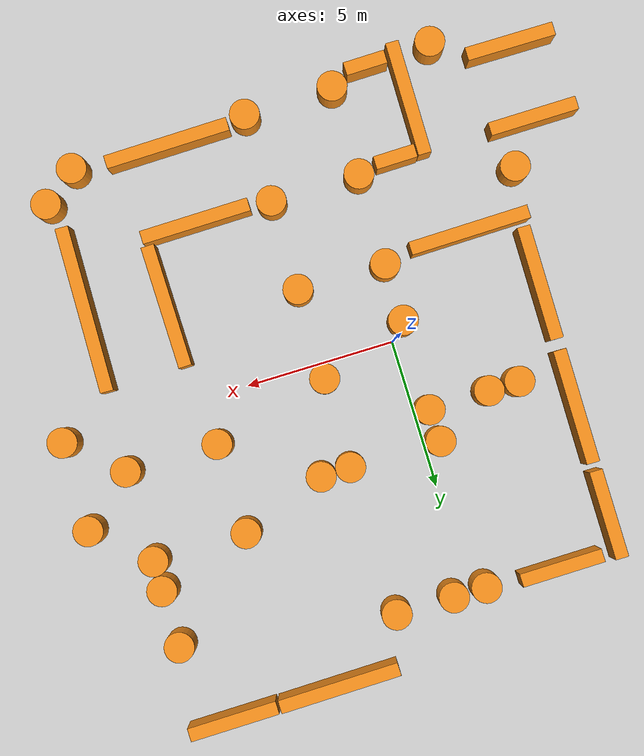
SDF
<sdf version="1.7">
 <world name="default">
  <light name="sun" type="directional">
   <pose>0 0 10 0 -0 0</pose>
   <diffuse>0.8 0.8 0.8 1</diffuse>
   <specular>0.2 0.2 0.2 1</specular>
   <attenuation>
    <range>1000</range>
    <constant>0.9</constant>
    <linear>0.01</linear>
    <quadratic>0.001</quadratic>
   </attenuation>
   <direction>-0.5 0.1 -0.9</direction>
   <spot><inner_angle>0</inner_angle><outer_angle>0</outer_angle><falloff>0</falloff></spot>
  </light>
  <model name="ground_plane">
   <static>1</static>
   <link name="link">
    <collision name="collision">
     <geometry><plane><normal>0 0 1</normal><size>100 100</size></plane></geometry>
     <surface>
      <contact><collide_bitmask>65535</collide_bitmask></contact>
      <friction><ode><mu>100</mu><mu2>50</mu2></ode></friction>
     </surface>
    </collision>
    <visual name="visual">
     <cast_shadows>0</cast_shadows>
     <geometry><plane><normal>0 0 1</normal><size>100 100</size></plane></geometry>
     <material>
      <script><uri>file://media/materials/scripts/gazebo.material</uri><name>Gazebo/Grey</name></script>
     </material>
    </visual>
   </link>
  </model>
  <gravity>0 0 -9.8</gravity>
  <magnetic_field>6e-06 2.3e-05 -4.2e-05</magnetic_field>
  <atmosphere type="adiabatic"/>
  <physics type="ode">
   <max_step_size>0.001</max_step_size>
   <real_time_factor>1</real_time_factor>
   <real_time_update_rate>1000</real_time_update_rate>
  </physics>
  <scene><ambient>0.4 0.4 0.4 1</ambient><background>0.7 0.7 0.7 1</background><shadows>1</shadows></scene>
  <spherical_coordinates>
   <surface_model>EARTH_WGS84</surface_model>
   <latitude_deg>0</latitude_deg>
   <longitude_deg>0</longitude_deg>
   <elevation>0</elevation>
   <heading_deg>0</heading_deg>
  </spherical_coordinates>
  <model name="unit_box_clone">
   <static>1</static>
   <pose>-6.514 -8.24527 0.499833 1e-06 -0.000112 -0.004604</pose>
   <link name="link">
    <inertial>
     <mass>1</mass>
     <inertia>
      <ixx>0.166667</ixx>
      <ixy>0</ixy>
      <ixz>0</ixz>
      <iyy>0.166667</iyy>
      <iyz>0</iyz>
      <izz>0.166667</izz>
     </inertia>
    </inertial>
    <collision name="collision"><geometry><box><size>2.97302 0.44 1</size></box></geometry></collision>
    <visual name="visual">
     <geometry><box><size>2.97302 0.44 1</size></box></geometry>
     <material>
      <script><name>Gazebo/Orange</name><uri>file://media/materials/scripts/gazebo.material</uri></script>
     </material>
    </visual>
   </link>
  </model>
  <model name="unit_box_clone_clone_1">
   <static>1</static>
   <pose>-6.51555 -5.68286 0.499833 1e-06 0.000113 0.004617</pose>
   <link name="link">
    <inertial>
     <mass>1</mass>
     <inertia>
      <ixx>0.166667</ixx>
      <ixy>0</ixy>
      <ixz>0</ixz>
      <iyy>0.166667</iyy>
      <iyz>0</iyz>
      <izz>0.166667</izz>
     </inertia>
    </inertial>
    <collision name="collision"><geometry><box><size>2.9745 0.44 1</size></box></geometry></collision>
    <visual name="visual">
     <geometry><box><size>2.9745 0.44 1</size></box></geometry>
     <material>
      <script><name>Gazebo/Orange</name><uri>file://media/materials/scripts/gazebo.material</uri></script>
     </material>
    </visual>
   </link>
  </model>
  <model name="unit_box_clone_clone_2">
   <static>1</static>
   <pose>-2.78807 -7.44536 0.499406 -3e-06 0.000312 -1.5804</pose>
   <link name="link">
    <inertial>
     <mass>1</mass>
     <inertia>
      <ixx>0.166667</ixx>
      <ixy>0</ixy>
      <ixz>0</ixz>
      <iyy>0.166667</iyy>
      <iyz>0</iyz>
      <izz>0.166667</izz>
     </inertia>
    </inertial>
    <collision name="collision"><geometry><box><size>3.8183 0.44 1</size></box></geometry></collision>
    <visual name="visual">
     <geometry><box><size>3.8183 0.44 1</size></box></geometry>
     <material>
      <script><name>Gazebo/Orange</name><uri>file://media/materials/scripts/gazebo.material</uri></script>
     </material>
    </visual>
   </link>
  </model>
  <model name="unit_box_clone_clone_1_clone">
   <static>1</static>
   <pose>-3.42885 -2.72467 0.499211 5e-06 0.000391 0.01153</pose>
   <link name="link">
    <inertial>
     <mass>1</mass>
     <inertia>
      <ixx>0.166667</ixx>
      <ixy>0</ixy>
      <ixz>0</ixz>
      <iyy>0.166667</iyy>
      <iyz>0</iyz>
      <izz>0.166667</izz>
     </inertia>
    </inertial>
    <collision name="collision"><geometry><box><size>4.04978 0.44 1</size></box></geometry></collision>
    <visual name="visual">
     <geometry><box><size>4.04978 0.44 1</size></box></geometry>
     <material>
      <script><name>Gazebo/Orange</name><uri>file://media/materials/scripts/gazebo.material</uri></script>
     </material>
    </visual>
   </link>
  </model>
  <model name="unit_cylinder_0">
   <static>1</static>
   <pose>-0.480974 -2.47128 0.499997 1e-06 -0 0</pose>
   <link name="link">
    <inertial>
     <mass>1</mass>
     <inertia><ixx>0.145833</ixx><ixy>0</ixy><ixz>0</ixz><iyy>0.145833</iyy><iyz>0</iyz><izz>0.125</izz></inertia>
    </inertial>
    <collision name="collision">
     <geometry><cylinder><radius>0.5</radius><length>1</length></cylinder></geometry>
    </collision>
    <visual name="visual">
     <geometry><cylinder><radius>0.5</radius><length>1</length></cylinder></geometry>
     <material>
      <script><name>Gazebo/Orange</name><uri>file://media/materials/scripts/gazebo.material</uri></script>
     </material>
    </visual>
   </link>
  </model>
  <model name="unit_cylinder_4">
   <static>1</static>
   <pose>-0.516896 -5.53105 0.499994 -1e-06 -0 -0</pose>
   <link name="link">
    <inertial>
     <mass>1</mass>
     <inertia><ixx>0.145833</ixx><ixy>0</ixy><ixz>0</ixz><iyy>0.145833</iyy><iyz>0</iyz><izz>0.125</izz></inertia>
    </inertial>
    <collision name="collision">
     <geometry><cylinder><radius>0.5</radius><length>1</length></cylinder></geometry>
    </collision>
    <visual name="visual">
     <geometry><cylinder><radius>0.5</radius><length>1</length></cylinder></geometry>
     <material>
      <script><name>Gazebo/Orange</name><uri>file://media/materials/scripts/gazebo.material</uri></script>
     </material>
    </visual>
   </link>
  </model>
  <model name="unit_cylinder_4_clone">
   <static>1</static>
   <pose>-4.00116 -9.01084 0.499997 1e-06 -0 0</pose>
   <link name="link">
    <inertial>
     <mass>1</mass>
     <inertia><ixx>0.145833</ixx><ixy>0</ixy><ixz>0</ixz><iyy>0.145833</iyy><iyz>0</iyz><izz>0.125</izz></inertia>
    </inertial>
    <collision name="collision">
     <geometry><cylinder><radius>0.5</radius><length>1</length></cylinder></geometry>
    </collision>
    <visual name="visual">
     <geometry><cylinder><radius>0.5</radius><length>1</length></cylinder></geometry>
     <material>
      <script><name>Gazebo/Orange</name><uri>file://media/materials/scripts/gazebo.material</uri></script>
     </material>
    </visual>
   </link>
  </model>
  <model name="unit_cylinder_5">
   <static>1</static>
   <pose>-5.4664 -4.2854 0.499994 -1e-06 -0 -0</pose>
   <link name="link">
    <inertial>
     <mass>1</mass>
     <inertia><ixx>0.145833</ixx><ixy>0</ixy><ixz>0</ixz><iyy>0.145833</iyy><iyz>0</iyz><izz>0.125</izz></inertia>
    </inertial>
    <collision name="collision">
     <geometry><cylinder><radius>0.5</radius><length>1</length></cylinder></geometry>
    </collision>
    <visual name="visual">
     <geometry><cylinder><radius>0.5</radius><length>1</length></cylinder></geometry>
     <material>
      <script><name>Gazebo/Orange</name><uri>file://media/materials/scripts/gazebo.material</uri></script>
     </material>
    </visual>
   </link>
  </model>
  <model name="unit_cylinder_6">
   <static>1</static>
   <pose>2.4739 -5.52405 0.499994 -1e-06 -0 -0</pose>
   <link name="link">
    <inertial>
     <mass>1</mass>
     <inertia><ixx>0.145833</ixx><ixy>0</ixy><ixz>0</ixz><iyy>0.145833</iyy><iyz>0</iyz><izz>0.125</izz></inertia>
    </inertial>
    <collision name="collision">
     <geometry><cylinder><radius>0.5</radius><length>1</length></cylinder></geometry>
    </collision>
    <visual name="visual">
     <geometry><cylinder><radius>0.5</radius><length>1</length></cylinder></geometry>
     <material>
      <script><name>Gazebo/Orange</name><uri>file://media/materials/scripts/gazebo.material</uri></script>
     </material>
    </visual>
   </link>
  </model>
  <model name="unit_cylinder_7">
   <static>1</static>
   <pose>2.48409 -2.50429 0.499994 -1e-06 -0 -0</pose>
   <link name="link">
    <inertial>
     <mass>1</mass>
     <inertia><ixx>0.145833</ixx><ixy>0</ixy><ixz>0</ixz><iyy>0.145833</iyy><iyz>0</iyz><izz>0.125</izz></inertia>
    </inertial>
    <collision name="collision">
     <geometry><cylinder><radius>0.5</radius><length>1</length></cylinder></geometry>
    </collision>
    <visual name="visual">
     <geometry><cylinder><radius>0.5</radius><length>1</length></cylinder></geometry>
     <material>
      <script><name>Gazebo/Orange</name><uri>file://media/materials/scripts/gazebo.material</uri></script>
     </material>
    </visual>
   </link>
  </model>
  <model name="unit_cylinder_7_clone">
   <static>1</static>
   <pose>-0.49897 -0.541378 0.499997 1e-06 -0 0</pose>
   <link name="link">
    <inertial>
     <mass>1</mass>
     <inertia><ixx>0.145833</ixx><ixy>0</ixy><ixz>0</ixz><iyy>0.145833</iyy><iyz>0</iyz><izz>0.125</izz></inertia>
    </inertial>
    <collision name="collision">
     <geometry><cylinder><radius>0.5</radius><length>1</length></cylinder></geometry>
    </collision>
    <visual name="visual">
     <geometry><cylinder><radius>0.5</radius><length>1</length></cylinder></geometry>
     <material>
      <script><name>Gazebo/Orange</name><uri>file://media/materials/scripts/gazebo.material</uri></script>
     </material>
    </visual>
   </link>
  </model>
  <model name="unit_cylinder_7_clone_0">
   <static>1</static>
   <pose>2.50221 0.530976 0.499997 1e-06 -0 0</pose>
   <link name="link">
    <inertial>
     <mass>1</mass>
     <inertia><ixx>0.145833</ixx><ixy>0</ixy><ixz>0</ixz><iyy>0.145833</iyy><iyz>0</iyz><izz>0.125</izz></inertia>
    </inertial>
    <collision name="collision">
     <geometry><cylinder><radius>0.5</radius><length>1</length></cylinder></geometry>
    </collision>
    <visual name="visual">
     <geometry><cylinder><radius>0.5</radius><length>1</length></cylinder></geometry>
     <material>
      <script><name>Gazebo/Orange</name><uri>file://media/materials/scripts/gazebo.material</uri></script>
     </material>
    </visual>
   </link>
  </model>
  <model name="unit_cylinder_7_clone_clone">
   <static>1</static>
   <pose>-0.472274 2.49595 0.499994 -2e-06 -0 -0</pose>
   <link name="link">
    <inertial>
     <mass>1</mass>
     <inertia><ixx>0.145833</ixx><ixy>0</ixy><ixz>0</ixz><iyy>0.145833</iyy><iyz>0</iyz><izz>0.125</izz></inertia>
    </inertial>
    <collision name="collision">
     <geometry><cylinder><radius>0.5</radius><length>1</length></cylinder></geometry>
    </collision>
    <visual name="visual">
     <geometry><cylinder><radius>0.5</radius><length>1</length></cylinder></geometry>
     <material>
      <script><name>Gazebo/Orange</name><uri>file://media/materials/scripts/gazebo.material</uri></script>
     </material>
    </visual>
   </link>
  </model>
  <model name="unit_cylinder_7_clone_0_clone">
   <static>1</static>
   <pose>2.53875 3.52865 0.5 0 -0 2e-05</pose>
   <link name="link">
    <inertial>
     <mass>1</mass>
     <inertia><ixx>0.145833</ixx><ixy>0</ixy><ixz>0</ixz><iyy>0.145833</iyy><iyz>0</iyz><izz>0.125</izz></inertia>
    </inertial>
    <collision name="collision">
     <geometry><cylinder><radius>0.5</radius><length>1</length></cylinder></geometry>
    </collision>
    <visual name="visual">
     <geometry><cylinder><radius>0.5</radius><length>1</length></cylinder></geometry>
     <material>
      <script><name>Gazebo/Orange</name><uri>file://media/materials/scripts/gazebo.material</uri></script>
     </material>
    </visual>
   </link>
  </model>
  <model name="unit_cylinder_7_clone_0_clone_2">
   <static>1</static>
   <pose>-0.536464 8.5406 0.499997 2e-06 -0 0</pose>
   <link name="link">
    <inertial>
     <mass>1</mass>
     <inertia><ixx>0.145833</ixx><ixy>0</ixy><ixz>0</ixz><iyy>0.145833</iyy><iyz>0</iyz><izz>0.125</izz></inertia>
    </inertial>
    <collision name="collision">
     <geometry><cylinder><radius>0.5</radius><length>1</length></cylinder></geometry>
    </collision>
    <visual name="visual">
     <geometry><cylinder><radius>0.5</radius><length>1</length></cylinder></geometry>
     <material>
      <script><name>Gazebo/Orange</name><uri>file://media/materials/scripts/gazebo.material</uri></script>
     </material>
    </visual>
   </link>
  </model>
  <model name="unit_cylinder_7_clone_0_clone_0_clone">
   <static>1</static>
   <pose>-0.509806 3.57585 0.499994 -2e-06 -0 -0</pose>
   <link name="link">
    <inertial>
     <mass>1</mass>
     <inertia><ixx>0.145833</ixx><ixy>0</ixy><ixz>0</ixz><iyy>0.145833</iyy><iyz>0</iyz><izz>0.125</izz></inertia>
    </inertial>
    <collision name="collision">
     <geometry><cylinder><radius>0.5</radius><length>1</length></cylinder></geometry>
    </collision>
    <visual name="visual">
     <geometry><cylinder><radius>0.5</radius><length>1</length></cylinder></geometry>
     <material>
      <script><name>Gazebo/Orange</name><uri>file://media/materials/scripts/gazebo.material</uri></script>
     </material>
    </visual>
   </link>
  </model>
  <model name="unit_box_clone_clone_1_clone_clone">
   <static>1</static>
   <pose>5.0402 -5.61517 0.499513 -2e-06 -0.000266 0.008718</pose>
   <link name="link">
    <inertial>
     <mass>1</mass>
     <inertia>
      <ixx>0.166667</ixx>
      <ixy>0</ixy>
      <ixz>0</ixz>
      <iyy>0.166667</iyy>
      <iyz>0</iyz>
      <izz>0.166667</izz>
     </inertia>
    </inertial>
    <collision name="collision"><geometry><box><size>3.66692 0.44 1</size></box></geometry></collision>
    <visual name="visual">
     <geometry><box><size>3.66692 0.44 1</size></box></geometry>
     <material>
      <script><name>Gazebo/Orange</name><uri>file://media/materials/scripts/gazebo.material</uri></script>
     </material>
    </visual>
   </link>
  </model>
  <model name="unit_box_clone_clone_1_clone_clone_clone">
   <static>1</static>
   <pose>5.18986 -8.32751 0.499084 6e-06 0.00044 0.012517</pose>
   <link name="link">
    <inertial>
     <mass>1</mass>
     <inertia>
      <ixx>0.166667</ixx>
      <ixy>0</ixy>
      <ixz>0</ixz>
      <iyy>0.166667</iyy>
      <iyz>0</iyz>
      <izz>0.166667</izz>
     </inertia>
    </inertial>
    <collision name="collision"><geometry><box><size>4.17941 0.44 1</size></box></geometry></collision>
    <visual name="visual">
     <geometry><box><size>4.17941 0.44 1</size></box></geometry>
     <material>
      <script><name>Gazebo/Orange</name><uri>file://media/materials/scripts/gazebo.material</uri></script>
     </material>
    </visual>
   </link>
  </model>
  <model name="unit_cylinder_6_clone">
   <static>1</static>
   <pose>2.48643 -8.48945 0.49999 0 -0 0</pose>
   <link name="link">
    <inertial>
     <mass>1</mass>
     <inertia><ixx>0.145833</ixx><ixy>0</ixy><ixz>0</ixz><iyy>0.145833</iyy><iyz>0</iyz><izz>0.125</izz></inertia>
    </inertial>
    <collision name="collision">
     <geometry><cylinder><radius>0.5</radius><length>1</length></cylinder></geometry>
    </collision>
    <visual name="visual">
     <geometry><cylinder><radius>0.5</radius><length>1</length></cylinder></geometry>
     <material>
      <script><name>Gazebo/Orange</name><uri>file://media/materials/scripts/gazebo.material</uri></script>
     </material>
    </visual>
   </link>
  </model>
  <model name="unit_cylinder_6_clone_clone">
   <static>1</static>
   <pose>-0.518139 -8.54207 0.499994 -2e-06 -0 -0</pose>
   <link name="link">
    <inertial>
     <mass>1</mass>
     <inertia><ixx>0.145833</ixx><ixy>0</ixy><ixz>0</ixz><iyy>0.145833</iyy><iyz>0</iyz><izz>0.125</izz></inertia>
    </inertial>
    <collision name="collision">
     <geometry><cylinder><radius>0.5</radius><length>1</length></cylinder></geometry>
    </collision>
    <visual name="visual">
     <geometry><cylinder><radius>0.5</radius><length>1</length></cylinder></geometry>
     <material>
      <script><name>Gazebo/Orange</name><uri>file://media/materials/scripts/gazebo.material</uri></script>
     </material>
    </visual>
   </link>
  </model>
  <model name="unit_box_clone_clone_1_clone_clone_0">
   <static>1</static>
   <pose>-1.81527 -5.71701 0.499999 0 -1e-06 0.011399</pose>
   <link name="link">
    <inertial>
     <mass>1</mass>
     <inertia>
      <ixx>0.166667</ixx>
      <ixy>0</ixy>
      <ixz>0</ixz>
      <iyy>0.166667</iyy>
      <iyz>0</iyz>
      <izz>0.166667</izz>
     </inertia>
    </inertial>
    <collision name="collision"><geometry><box><size>1.39159 0.44 1</size></box></geometry></collision>
    <visual name="visual">
     <geometry><box><size>1.39159 0.44 1</size></box></geometry>
     <material>
      <script><name>Gazebo/Orange</name><uri>file://media/materials/scripts/gazebo.material</uri></script>
     </material>
    </visual>
   </link>
  </model>
  <model name="unit_box_clone_clone_1_clone_clone_0_clone">
   <static>1</static>
   <pose>-1.77874 -8.95128 0.499996 1e-06 5e-06 0.011386</pose>
   <link name="link">
    <inertial>
     <mass>1</mass>
     <inertia>
      <ixx>0.166667</ixx>
      <ixy>0</ixy>
      <ixz>0</ixz>
      <iyy>0.166667</iyy>
      <iyz>0</iyz>
      <izz>0.166667</izz>
     </inertia>
    </inertial>
    <collision name="collision"><geometry><box><size>1.39159 0.44 1</size></box></geometry></collision>
    <visual name="visual">
     <geometry><box><size>1.39159 0.44 1</size></box></geometry>
     <material>
      <script><name>Gazebo/Orange</name><uri>file://media/materials/scripts/gazebo.material</uri></script>
     </material>
    </visual>
   </link>
  </model>
  <model name="unit_box_clone_clone_2_clone_clone_clone">
   <static>1</static>
   <pose>6.74287 -3.22945 0.499149 -5e-06 -0.000415 -1.55893</pose>
   <link name="link">
    <inertial>
     <mass>1</mass>
     <inertia>
      <ixx>0.166667</ixx>
      <ixy>0</ixy>
      <ixz>0</ixz>
      <iyy>0.166667</iyy>
      <iyz>0</iyz>
      <izz>0.166667</izz>
     </inertia>
    </inertial>
    <collision name="collision"><geometry><box><size>4.11491 0.44 1</size></box></geometry></collision>
    <visual name="visual">
     <geometry><box><size>4.11491 0.44 1</size></box></geometry>
     <material>
      <script><name>Gazebo/Orange</name><uri>file://media/materials/scripts/gazebo.material</uri></script>
     </material>
    </visual>
   </link>
  </model>
  <model name="unit_cylinder_7_clone_1">
   <static>1</static>
   <pose>8.39715 -8.43905 0.499996 2e-06 -0 0</pose>
   <link name="link">
    <inertial>
     <mass>1</mass>
     <inertia><ixx>0.145833</ixx><ixy>0</ixy><ixz>0</ixz><iyy>0.145833</iyy><iyz>0</iyz><izz>0.125</izz></inertia>
    </inertial>
    <collision name="collision">
     <geometry><cylinder><radius>0.5</radius><length>1</length></cylinder></geometry>
    </collision>
    <visual name="visual">
     <geometry><cylinder><radius>0.5</radius><length>1</length></cylinder></geometry>
     <material>
      <script><name>Gazebo/Orange</name><uri>file://media/materials/scripts/gazebo.material</uri></script>
     </material>
    </visual>
   </link>
  </model>
  <model name="unit_cylinder_7_clone_2">
   <static>1</static>
   <pose>9.52561 -7.55742 0.499994 -2e-06 -0 -0</pose>
   <link name="link">
    <inertial>
     <mass>1</mass>
     <inertia><ixx>0.145833</ixx><ixy>0</ixy><ixz>0</ixz><iyy>0.145833</iyy><iyz>0</iyz><izz>0.125</izz></inertia>
    </inertial>
    <collision name="collision">
     <geometry><cylinder><radius>0.5</radius><length>1</length></cylinder></geometry>
    </collision>
    <visual name="visual">
     <geometry><cylinder><radius>0.5</radius><length>1</length></cylinder></geometry>
     <material>
      <script><name>Gazebo/Orange</name><uri>file://media/materials/scripts/gazebo.material</uri></script>
     </material>
    </visual>
   </link>
  </model>
  <model name="unit_box_clone_clone_2_clone_clone_clone_clone">
   <static>1</static>
   <pose>9.32831 -3.90631 0.496608 -2.7e-05 0.001226 -1.59248</pose>
   <link name="link">
    <inertial>
     <mass>1</mass>
     <inertia>
      <ixx>0.166667</ixx>
      <ixy>0</ixy>
      <ixz>0</ixz>
      <iyy>0.166667</iyy>
      <iyz>0</iyz>
      <izz>0.166667</izz>
     </inertia>
    </inertial>
    <collision name="collision"><geometry><box><size>5.5532 0.44 1</size></box></geometry></collision>
    <visual name="visual">
     <geometry><box><size>5.5532 0.44 1</size></box></geometry>
     <material>
      <script><name>Gazebo/Orange</name><uri>file://media/materials/scripts/gazebo.material</uri></script>
     </material>
    </visual>
   </link>
  </model>
  <model name="unit_cylinder_7_clone_0_clone_0">
   <static>1</static>
   <pose>11.2529 0.04206 0.499997 3e-06 2e-06 0</pose>
   <link name="link">
    <inertial>
     <mass>1</mass>
     <inertia><ixx>0.145833</ixx><ixy>0</ixy><ixz>0</ixz><iyy>0.145833</iyy><iyz>0</iyz><izz>0.125</izz></inertia>
    </inertial>
    <collision name="collision">
     <geometry><cylinder><radius>0.5</radius><length>1</length></cylinder></geometry>
    </collision>
    <visual name="visual">
     <geometry><cylinder><radius>0.5</radius><length>1</length></cylinder></geometry>
     <material>
      <script><name>Gazebo/Orange</name><uri>file://media/materials/scripts/gazebo.material</uri></script>
     </material>
    </visual>
   </link>
  </model>
  <model name="unit_cylinder_7_clone_0_clone_1">
   <static>1</static>
   <pose>9.55566 1.53993 0.499996 3e-06 1e-06 -0</pose>
   <link name="link">
    <inertial>
     <mass>1</mass>
     <inertia><ixx>0.145833</ixx><ixy>0</ixy><ixz>0</ixz><iyy>0.145833</iyy><iyz>0</iyz><izz>0.125</izz></inertia>
    </inertial>
    <collision name="collision">
     <geometry><cylinder><radius>0.5</radius><length>1</length></cylinder></geometry>
    </collision>
    <visual name="visual">
     <geometry><cylinder><radius>0.5</radius><length>1</length></cylinder></geometry>
     <material>
      <script><name>Gazebo/Orange</name><uri>file://media/materials/scripts/gazebo.material</uri></script>
     </material>
    </visual>
   </link>
  </model>
  <model name="unit_cylinder_7_clone_0_clone_3">
   <static>1</static>
   <pose>6.46147 1.54817 0.499994 -3e-06 -1e-06 -0</pose>
   <link name="link">
    <inertial>
     <mass>1</mass>
     <inertia><ixx>0.145833</ixx><ixy>0</ixy><ixz>0</ixz><iyy>0.145833</iyy><iyz>0</iyz><izz>0.125</izz></inertia>
    </inertial>
    <collision name="collision">
     <geometry><cylinder><radius>0.5</radius><length>1</length></cylinder></geometry>
    </collision>
    <visual name="visual">
     <geometry><cylinder><radius>0.5</radius><length>1</length></cylinder></geometry>
     <material>
      <script><name>Gazebo/Orange</name><uri>file://media/materials/scripts/gazebo.material</uri></script>
     </material>
    </visual>
   </link>
  </model>
  <model name="unit_cylinder_7_clone_0_clone_clone">
   <static>1</static>
   <pose>6.40094 4.58284 0.499997 3e-06 2e-06 0</pose>
   <link name="link">
    <inertial>
     <mass>1</mass>
     <inertia><ixx>0.145833</ixx><ixy>0</ixy><ixz>0</ixz><iyy>0.145833</iyy><iyz>0</iyz><izz>0.125</izz></inertia>
    </inertial>
    <collision name="collision">
     <geometry><cylinder><radius>0.5</radius><length>1</length></cylinder></geometry>
    </collision>
    <visual name="visual">
     <geometry><cylinder><radius>0.5</radius><length>1</length></cylinder></geometry>
     <material>
      <script><name>Gazebo/Orange</name><uri>file://media/materials/scripts/gazebo.material</uri></script>
     </material>
    </visual>
   </link>
  </model>
  <model name="unit_cylinder_7_clone_0_clone_clone_0">
   <static>1</static>
   <pose>9.5394 4.57627 0.499997 3e-06 2e-06 6.1e-05</pose>
   <link name="link">
    <inertial>
     <mass>1</mass>
     <inertia><ixx>0.145833</ixx><ixy>0</ixy><ixz>0</ixz><iyy>0.145833</iyy><iyz>0</iyz><izz>0.125</izz></inertia>
    </inertial>
    <collision name="collision">
     <geometry><cylinder><radius>0.5</radius><length>1</length></cylinder></geometry>
    </collision>
    <visual name="visual">
     <geometry><cylinder><radius>0.5</radius><length>1</length></cylinder></geometry>
     <material>
      <script><name>Gazebo/Orange</name><uri>file://media/materials/scripts/gazebo.material</uri></script>
     </material>
    </visual>
   </link>
  </model>
  <model name="unit_cylinder_7_clone_0_clone_clone_1">
   <static>1</static>
   <pose>11.2748 3.02781 0.499997 3e-06 2e-06 0</pose>
   <link name="link">
    <inertial>
     <mass>1</mass>
     <inertia><ixx>0.145833</ixx><ixy>0</ixy><ixz>0</ixz><iyy>0.145833</iyy><iyz>0</iyz><izz>0.125</izz></inertia>
    </inertial>
    <collision name="collision">
     <geometry><cylinder><radius>0.5</radius><length>1</length></cylinder></geometry>
    </collision>
    <visual name="visual">
     <geometry><cylinder><radius>0.5</radius><length>1</length></cylinder></geometry>
     <material>
      <script><name>Gazebo/Orange</name><uri>file://media/materials/scripts/gazebo.material</uri></script>
     </material>
    </visual>
   </link>
  </model>
  <model name="unit_cylinder_7_clone_0_clone_clone_clone">
   <static>1</static>
   <pose>9.53225 7.47329 0.499997 3e-06 2e-06 0</pose>
   <link name="link">
    <inertial>
     <mass>1</mass>
     <inertia><ixx>0.145833</ixx><ixy>0</ixy><ixz>0</ixz><iyy>0.145833</iyy><iyz>0</iyz><izz>0.125</izz></inertia>
    </inertial>
    <collision name="collision">
     <geometry><cylinder><radius>0.5</radius><length>1</length></cylinder></geometry>
    </collision>
    <visual name="visual">
     <geometry><cylinder><radius>0.5</radius><length>1</length></cylinder></geometry>
     <material>
      <script><name>Gazebo/Orange</name><uri>file://media/materials/scripts/gazebo.material</uri></script>
     </material>
    </visual>
   </link>
  </model>
  <model name="unit_cylinder_7_clone_0_clone_clone_clone_1">
   <static>1</static>
   <pose>3.53865 3.54335 0.5 0 0 -7.6e-05</pose>
   <link name="link">
    <inertial>
     <mass>1</mass>
     <inertia><ixx>0.145833</ixx><ixy>0</ixy><ixz>0</ixz><iyy>0.145833</iyy><iyz>0</iyz><izz>0.125</izz></inertia>
    </inertial>
    <collision name="collision">
     <geometry><cylinder><radius>0.5</radius><length>1</length></cylinder></geometry>
    </collision>
    <visual name="visual">
     <geometry><cylinder><radius>0.5</radius><length>1</length></cylinder></geometry>
     <material>
      <script><name>Gazebo/Orange</name><uri>file://media/materials/scripts/gazebo.material</uri></script>
     </material>
    </visual>
   </link>
  </model>
  <model name="unit_cylinder_7_clone_0_clone_clone_clone_0_clone">
   <static>1</static>
   <pose>9.54472 5.57629 0.499995 -3e-06 1e-06 7.7e-05</pose>
   <link name="link">
    <inertial>
     <mass>1</mass>
     <inertia><ixx>0.145833</ixx><ixy>0</ixy><ixz>0</ixz><iyy>0.145833</iyy><iyz>0</iyz><izz>0.125</izz></inertia>
    </inertial>
    <collision name="collision">
     <geometry><cylinder><radius>0.5</radius><length>1</length></cylinder></geometry>
    </collision>
    <visual name="visual">
     <geometry><cylinder><radius>0.5</radius><length>1</length></cylinder></geometry>
     <material>
      <script><name>Gazebo/Orange</name><uri>file://media/materials/scripts/gazebo.material</uri></script>
     </material>
    </visual>
   </link>
  </model>
  <model name="unit_box_clone_clone_2_clone">
   <static>1</static>
   <pose>-5.02091 7.42686 0.49984 0 0.000109 -1.57659</pose>
   <link name="link">
    <inertial>
     <mass>1</mass>
     <inertia>
      <ixx>0.166667</ixx>
      <ixy>0</ixy>
      <ixz>0</ixz>
      <iyy>0.166667</iyy>
      <iyz>0</iyz>
      <izz>0.166667</izz>
     </inertia>
    </inertial>
    <collision name="collision"><geometry><box><size>2.95052 0.44 1</size></box></geometry></collision>
    <visual name="visual">
     <geometry><box><size>2.95052 0.44 1</size></box></geometry>
     <material>
      <script><name>Gazebo/Orange</name><uri>file://media/materials/scripts/gazebo.material</uri></script>
     </material>
    </visual>
   </link>
  </model>
  <model name="unit_box_clone_clone_2_clone_0">
   <static>1</static>
   <pose>-5.04784 3.77524 0.499406 3e-06 -0.000312 -1.5804</pose>
   <link name="link">
    <inertial>
     <mass>1</mass>
     <inertia>
      <ixx>0.166667</ixx>
      <ixy>0</ixy>
      <ixz>0</ixz>
      <iyy>0.166667</iyy>
      <iyz>0</iyz>
      <izz>0.166667</izz>
     </inertia>
    </inertial>
    <collision name="collision"><geometry><box><size>3.81832 0.44 1</size></box></geometry></collision>
    <visual name="visual">
     <geometry><box><size>3.81832 0.44 1</size></box></geometry>
     <material>
      <script><name>Gazebo/Orange</name><uri>file://media/materials/scripts/gazebo.material</uri></script>
     </material>
    </visual>
   </link>
  </model>
  <model name="unit_box_clone_clone_2_clone_0_clone">
   <static>1</static>
   <pose>-5.11334 -0.410967 0.499406 -3e-06 0.000312 -1.5804</pose>
   <link name="link">
    <inertial>
     <mass>1</mass>
     <inertia>
      <ixx>0.166667</ixx>
      <ixy>0</ixy>
      <ixz>0</ixz>
      <iyy>0.166667</iyy>
      <iyz>0</iyz>
      <izz>0.166667</izz>
     </inertia>
    </inertial>
    <collision name="collision"><geometry><box><size>3.81832 0.44 1</size></box></geometry></collision>
    <visual name="visual">
     <geometry><box><size>3.81832 0.44 1</size></box></geometry>
     <material>
      <script><name>Gazebo/Orange</name><uri>file://media/materials/scripts/gazebo.material</uri></script>
     </material>
    </visual>
   </link>
  </model>
  <model name="unit_cylinder_7_clone_0_clone_clone_clone_0_clone_0">
   <static>1</static>
   <pose>-2.49538 2.46579 0.499998 3e-06 4e-06 -0.019734</pose>
   <link name="link">
    <inertial>
     <mass>1</mass>
     <inertia><ixx>0.145833</ixx><ixy>0</ixy><ixz>0</ixz><iyy>0.145833</iyy><iyz>0</iyz><izz>0.125</izz></inertia>
    </inertial>
    <collision name="collision">
     <geometry><cylinder><radius>0.5</radius><length>1</length></cylinder></geometry>
    </collision>
    <visual name="visual">
     <geometry><cylinder><radius>0.5</radius><length>1</length></cylinder></geometry>
     <material>
      <script><name>Gazebo/Orange</name><uri>file://media/materials/scripts/gazebo.material</uri></script>
     </material>
    </visual>
   </link>
  </model>
  <model name="unit_cylinder_7_clone_0_clone_clone_clone_0_clone_1">
   <static>1</static>
   <pose>-3.53067 2.46222 0.499994 -4e-06 -2e-06 -0</pose>
   <link name="link">
    <inertial>
     <mass>1</mass>
     <inertia><ixx>0.145833</ixx><ixy>0</ixy><ixz>0</ixz><iyy>0.145833</iyy><iyz>0</iyz><izz>0.125</izz></inertia>
    </inertial>
    <collision name="collision">
     <geometry><cylinder><radius>0.5</radius><length>1</length></cylinder></geometry>
    </collision>
    <visual name="visual">
     <geometry><cylinder><radius>0.5</radius><length>1</length></cylinder></geometry>
     <material>
      <script><name>Gazebo/Orange</name><uri>file://media/materials/scripts/gazebo.material</uri></script>
     </material>
    </visual>
   </link>
  </model>
  <model name="unit_box_clone_clone_1_clone_clone_1">
   <static>1</static>
   <pose>-3.0638 8.6396 0.499885 0 -8.3e-05 0.006651</pose>
   <link name="link">
    <inertial>
     <mass>1</mass>
     <inertia>
      <ixx>0.166667</ixx>
      <ixy>0</ixy>
      <ixz>0</ixz>
      <iyy>0.166667</iyy>
      <iyz>0</iyz>
      <izz>0.166667</izz>
     </inertia>
    </inertial>
    <collision name="collision"><geometry><box><size>2.77516 0.44 1</size></box></geometry></collision>
    <visual name="visual">
     <geometry><box><size>2.77516 0.44 1</size></box></geometry>
     <material>
      <script><name>Gazebo/Orange</name><uri>file://media/materials/scripts/gazebo.material</uri></script>
     </material>
    </visual>
   </link>
  </model>
  <model name="unit_cylinder_7_clone_0_clone_clone_clone_0_clone_2">
   <static>1</static>
   <pose>0.560413 8.52867 0.499998 3e-06 -2e-06 0</pose>
   <link name="link">
    <inertial>
     <mass>1</mass>
     <inertia><ixx>0.145833</ixx><ixy>0</ixy><ixz>0</ixz><iyy>0.145833</iyy><iyz>0</iyz><izz>0.125</izz></inertia>
    </inertial>
    <collision name="collision">
     <geometry><cylinder><radius>0.5</radius><length>1</length></cylinder></geometry>
    </collision>
    <visual name="visual">
     <geometry><cylinder><radius>0.5</radius><length>1</length></cylinder></geometry>
     <material>
      <script><name>Gazebo/Orange</name><uri>file://media/materials/scripts/gazebo.material</uri></script>
     </material>
    </visual>
   </link>
  </model>
  <model name="unit_cylinder_7_clone_0_clone_clone_clone_0_clone_2_clone">
   <static>1</static>
   <pose>2.4939 8.51818 0.499992 -3e-06 2e-06 0</pose>
   <link name="link">
    <inertial>
     <mass>1</mass>
     <inertia><ixx>0.145833</ixx><ixy>0</ixy><ixz>0</ixz><iyy>0.145833</iyy><iyz>0</iyz><izz>0.125</izz></inertia>
    </inertial>
    <collision name="collision">
     <geometry><cylinder><radius>0.5</radius><length>1</length></cylinder></geometry>
    </collision>
    <visual name="visual">
     <geometry><cylinder><radius>0.5</radius><length>1</length></cylinder></geometry>
     <material>
      <script><name>Gazebo/Orange</name><uri>file://media/materials/scripts/gazebo.material</uri></script>
     </material>
    </visual>
   </link>
  </model>
  <model name="unit_box_clone_clone_1_clone_clone_2">
   <static>1</static>
   <pose>4.96005 10.2316 0.499211 5e-06 0.000391 0.01153</pose>
   <link name="link">
    <inertial>
     <mass>1</mass>
     <inertia>
      <ixx>0.166667</ixx>
      <ixy>0</ixy>
      <ixz>0</ixz>
      <iyy>0.166667</iyy>
      <iyz>0</iyz>
      <izz>0.166667</izz>
     </inertia>
    </inertial>
    <collision name="collision"><geometry><box><size>4.04978 0.44 1</size></box></geometry></collision>
    <visual name="visual">
     <geometry><box><size>4.04978 0.44 1</size></box></geometry>
     <material>
      <script><name>Gazebo/Orange</name><uri>file://media/materials/scripts/gazebo.material</uri></script>
     </material>
    </visual>
   </link>
  </model>
  <model name="unit_box_clone_clone_1_clone_clone_3">
   <static>1</static>
   <pose>8.55048 10.252 0.499831 -1e-06 -0.000114 0.007695</pose>
   <link name="link">
    <inertial>
     <mass>1</mass>
     <inertia>
      <ixx>0.166667</ixx>
      <ixy>0</ixy>
      <ixz>0</ixz>
      <iyy>0.166667</iyy>
      <iyz>0</iyz>
      <izz>0.166667</izz>
     </inertia>
    </inertial>
    <collision name="collision"><geometry><box><size>2.98162 0.44 1</size></box></geometry></collision>
    <visual name="visual">
     <geometry><box><size>2.98162 0.44 1</size></box></geometry>
     <material>
      <script><name>Gazebo/Orange</name><uri>file://media/materials/scripts/gazebo.material</uri></script>
     </material>
    </visual>
   </link>
  </model>
 </world>
</sdf>
